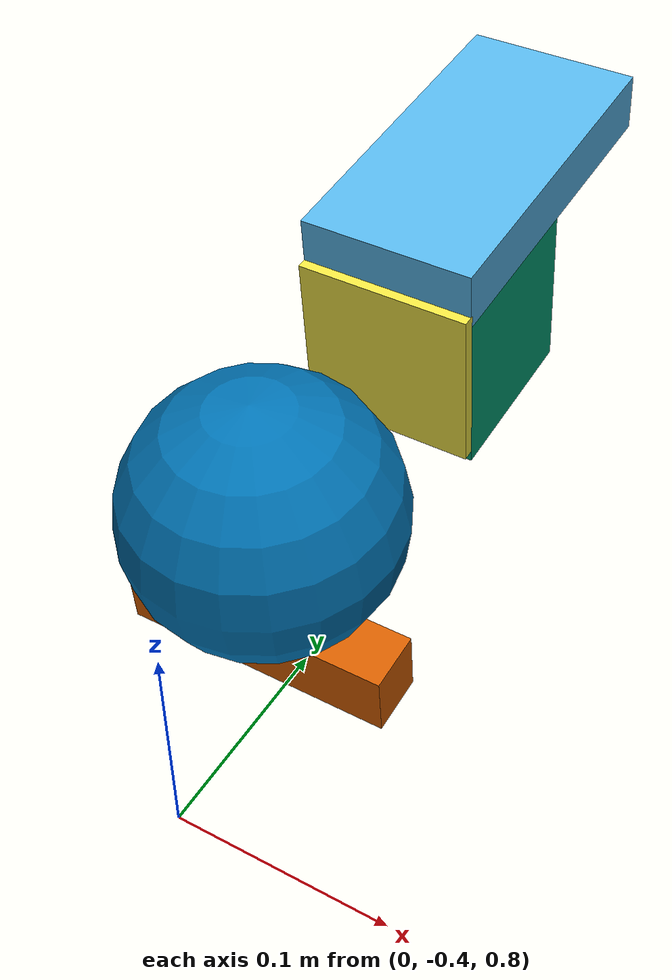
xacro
<?xml version="1.0"?>
<robot name="head_test" xmlns:xacro="http://ros.org/wiki/xacro">

<gazebo>
  <plugin name="gazebo_ros_control" filename="libgazebo_ros_control.so">
    <robotNamespace>/head_test</robotNamespace>
  </plugin>
</gazebo>

<link name="world">
</link>
<joint name="DJI_connect_joint" type="fixed">
	<parent link="world"/>
	<child link="DJI_connect_link"/>
	<origin rpy="${pi+0.0873} 0 0" xyz="0 -74.58e-3 1"/>
</joint>

<link name="DJI_connect_link">
	<visual>
      <origin xyz="0 79e-3 13.5e-3" rpy="0 0 0"/>
      <geometry>
	      <box size="80e-3 158e-3 27e-3"/>
      </geometry>
	</visual>

    <collision>
      <origin xyz="0 79e-3 13.5e-3" rpy="0 0 0"/>
      <geometry>
	      <box size="80e-3 158e-3 27e-3"/>
      </geometry>
    </collision>

    <inertial>
      <origin xyz="0 81.25e-3 13.5e-3" rpy="0 0 0"/>
      <mass value="0.05"/>
      <inertia
        ixx="${0.05/12*(158e-3*158e-3+27e-3*27e-3)}" ixy="0.0" ixz="0.0"
        iyy="${0.05/12*(27e-3*27e-3+80e-3*80e-3)}" iyz="0.0"
        izz="${0.05/12*(158e-3*158e-3+80e-3*80e-3)}"/>
    </inertial>
</link>

<joint name="neck_base_joint" type="fixed">
	<parent link="DJI_connect_link"/>
	<child link="neck_base_link"/>
	<origin rpy="0 0 0" xyz="0 117e-3 27e-3"/>
</joint>

<link name="neck_base_link">
	<visual>
      <origin xyz="0 0 40e-3" rpy="0 0 0"/>
      <geometry>
        <box size="80e-3 80e-3 80e-3"/>
      </geometry>
	</visual>

    <collision>
      <origin xyz="0 0 40e-3" rpy="0 0 0"/>
      <geometry>
        <box size="80e-3 80e-3 80e-3"/>
      </geometry>
    </collision>

    <inertial>
      <origin xyz="-1.6749134e-05 1.3880927e-3 3.2904335e-2" rpy="-0.3776 -0.0858 1.5403"/>
      <mass value="0.454"/>
      <inertia
        ixx="1.6874028e-4" ixy="0.0" ixz="0.0"
        iyy="1.7773673e-4" iyz="0.0"
        izz="1.8020647e-4"/>
    </inertial>
</link>

<joint name="neck_joint_1" type="revolute">
 	<axis xyz="0 1 0"/>
 	<limit effort="1000.0" lower="${-pi}" upper="${pi}" velocity="1"/>
	<parent link="neck_base_link"/>
	<child link="neck_link_1"/>
	<origin rpy="0 0 0" xyz="0 45.5e-3 34e-3"/>
  <dynamics damping="1e-5" friction="1e-5"/>
</joint>

<link name="neck_link_1">
	<visual>
      <origin xyz="0 -2.75e-3 0" rpy="0 0 0"/>
      <geometry>
        <box size="80e-3 5.5e-3 80e-3"/>
      </geometry>
	</visual>

    <collision>
      <origin xyz="0 -2.75e-3 0" rpy="0 0 0"/>
      <geometry>
        <box size="80e-3 5.5e-3 80e-3"/>
      </geometry>
    </collision>

    <inertial>
      <origin xyz="7.3157519e-3 2.6015782e-2 0" rpy="0 0 0.5020"/>
      <mass value="0.0866"/>
      <inertia
        ixx="6.8361134e-5" ixy="0.0" ixz="0.0"
        iyy="1.1299140e-4" iyz="0.0"
        izz="1.3810438e-4"/>
    </inertial>
</link>

<joint name="neck_joint_2" type="revolute">
 	<axis xyz="1 0 0"/>
 	<limit effort="1000.0" lower="${-pi/2}" upper="${pi/2}" velocity="1"/>
	<parent link="neck_link_1"/>
	<child link="head_link"/>
	<origin rpy="0 0 0" xyz="0 56e-3 0"/>
  <dynamics damping="1e-5" friction="1e-5"/>
</joint>

<link name="head_link">
	<visual>
      <origin xyz="0 40e-3 0" rpy="0 0 0"/>
      <geometry>
        <sphere radius="60e-3"/>
      </geometry>
	</visual>

    <collision>
      <origin xyz="0 40e-3 0" rpy="0 0 0"/>
      <geometry>
        <sphere radius="60e-3"/>
      </geometry>
    </collision>

    <inertial>
      <origin xyz="1.6724729e-04 2.5974293e-2 1.6809604e-2" rpy="1.5708 -0.0334 0"/>
      <mass value="0.95"/>
      <inertia
        ixx="1.4514462e-3" ixy="0.0" ixz="0.0"
        iyy="2.0518578e-3" iyz="0.0"
        izz="2.1893905e-3"/>
    </inertial>
</link>

 <xacro:property name="camera_link" value="0.05" /> <!-- Size of square 'camera' box -->

<joint name="eye_joint" type="fixed">
  <axis xyz="0 1 0" />
	<parent link="head_link"/>
	<child link="left_camera_frame"/>
	<origin rpy="${-pi/2} ${-pi/2} 0" xyz="31e-3 46.83e-3 81.95e-3"/>
</joint>

  <!-- Camera -->
  <link name="left_camera_frame">
    <collision>
      <origin xyz="-15.25e-3 -31e-3 0 " rpy="0 0 0"/>
      <geometry>
	      <box size="30.5e-3 124.5e-3 26.5e-3 "/>
      </geometry>
    </collision>

    <visual>
      <origin xyz=" -15.25e-3 -31e-3 0" rpy="0 0 0"/>
      <geometry>
	      <box size="30.5e-3 124.5e-3 26.5e-3"/>
      </geometry>
    </visual>

    <inertial>
      <mass value="1e-5" />
      <origin xyz="0 0 0" rpy="0 0 0"/>
      <inertia ixx="1e-6" ixy="0" ixz="0" iyy="1e-6" iyz="0" izz="1e-6" />
    </inertial>
  </link>

  <!-- generate an optical frame http://www.ros.org/reps/rep-0103.html#suffix-frames
      so that ros and opencv can operate on the camera frame correctly -->
  <joint name="camera_optical_joint" type="fixed">
    <!-- these values have to be these values otherwise the gazebo camera image
        won't be aligned properly with the frame it is supposedly originating from -->
    <origin xyz="0 0 0" rpy="${-pi/2} 0 ${-pi/2}"/>
    <parent link="left_camera_frame"/>
    <child link="left_camera_optical_frame"/>
  </joint>

  <link name="left_camera_optical_frame">
  </link>

<gazebo reference="left_camera_frame">
    <sensor type="multicamera" name="stereo_camera">
      <update_rate>30.0</update_rate>
      <camera name="left">
        <horizontal_fov>1.3962634</horizontal_fov>
        <image>
          <width>1280</width>
          <height>720</height>
          <format>R8G8B8</format>
        </image>
        <clip>
          <near>0.02</near>
          <far>300</far>
        </clip>
        <noise>
          <type>gaussian</type>
          <mean>0.0</mean>
          <stddev>0.007</stddev>
        </noise>
      </camera>
      <camera name="right">
        <pose>0 -0.070 0 0 0 0</pose>
        <horizontal_fov>1.3962634</horizontal_fov>
        <image>
          <width>1280</width>
          <height>720</height>
          <format>R8G8B8</format>
        </image>
        <clip>
          <near>0.02</near>
          <far>300</far>
        </clip>
        <noise>
          <type>gaussian</type>
          <mean>0.0</mean>
          <stddev>0.007</stddev>
        </noise>
      </camera>
      <plugin name="stereo_camera_controller" filename="libgazebo_ros_multicamera.so">
        <alwaysOn>true</alwaysOn>
        <updateRate>0.0</updateRate>
        <cameraName>yigle/camera</cameraName>
        <imageTopicName>image_raw</imageTopicName>
        <cameraInfoTopicName>camera_info</cameraInfoTopicName>
        <frameName>left_camera_optical_frame</frameName>
        <hackBaseline>0.07</hackBaseline>
        <distortionK1>0.0</distortionK1>
        <distortionK2>0.0</distortionK2>
        <distortionK3>0.0</distortionK3>
        <distortionT1>0.0</distortionT1>
        <distortionT2>0.0</distortionT2>
      </plugin>
    </sensor>
  </gazebo>

  <transmission name="tran_neck1">
    <type>transmission_interface/SimpleTransmission</type>
    <joint name="neck_joint_1">
      <hardwareInterface>hardware_interface/EffortJointInterface</hardwareInterface>
    </joint>
    <actuator name="motor_neck1">
      <hardwareInterface>hardware_interface/EffortJointInterface</hardwareInterface>
      <mechanicalReduction>1</mechanicalReduction>
    </actuator>
  </transmission>

  <transmission name="tran_neck2">
    <type>transmission_interface/SimpleTransmission</type>
    <joint name="neck_joint_2">
      <hardwareInterface>hardware_interface/EffortJointInterface</hardwareInterface>
    </joint>
    <actuator name="motor_neck2">
      <hardwareInterface>hardware_interface/EffortJointInterface</hardwareInterface>
      <mechanicalReduction>1</mechanicalReduction>
    </actuator>
  </transmission>
</robot>
